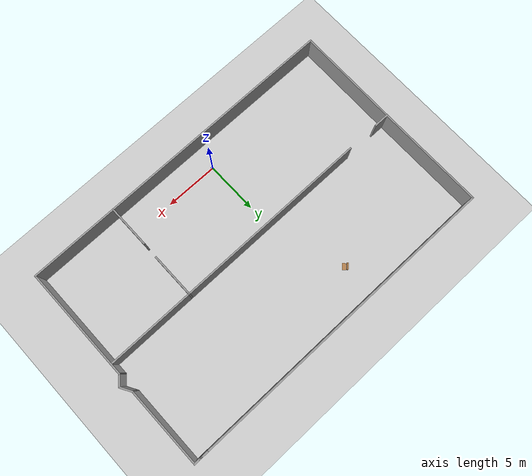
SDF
<sdf version="1.7">
 <world name="default">
  <light name="sun" type="directional">
   <pose>0 0 10 0 -0 0</pose>
   <diffuse>0.8 0.8 0.8 1</diffuse>
   <specular>0.2 0.2 0.2 1</specular>
   <attenuation>
    <range>1000</range>
    <constant>0.9</constant>
    <linear>0.01</linear>
    <quadratic>0.001</quadratic>
   </attenuation>
   <direction>-0.5 0.1 -0.9</direction>
   <spot><inner_angle>0</inner_angle><outer_angle>0</outer_angle><falloff>0</falloff></spot>
  </light>
  <model name="ground_plane">
   <static>1</static>
   <link name="link">
    <collision name="collision">
     <geometry><plane><normal>0 0 1</normal><size>100 100</size></plane></geometry>
     <surface>
      <contact><collide_bitmask>65535</collide_bitmask></contact>
      <friction><ode><mu>100</mu><mu2>50</mu2></ode></friction>
     </surface>
    </collision>
    <visual name="visual">
     <cast_shadows>0</cast_shadows>
     <geometry><plane><normal>0 0 1</normal><size>100 100</size></plane></geometry>
     <material>
      <script><uri>file://media/materials/scripts/gazebo.material</uri><name>Gazebo/Grey</name></script>
     </material>
    </visual>
   </link>
  </model>
  <gravity>0 0 -9.8</gravity>
  <magnetic_field>6e-06 2.3e-05 -4.2e-05</magnetic_field>
  <atmosphere type="adiabatic"/>
  <physics type="ode">
   <max_step_size>0.001</max_step_size>
   <real_time_factor>1</real_time_factor>
   <real_time_update_rate>1000</real_time_update_rate>
  </physics>
  <scene><ambient>0.4 0.4 0.4 1</ambient><background>0.7 0.7 0.7 1</background><shadows>1</shadows></scene>
  <audio><device>default</device></audio>
  <spherical_coordinates>
   <surface_model>EARTH_WGS84</surface_model>
   <latitude_deg>0</latitude_deg>
   <longitude_deg>0</longitude_deg>
   <elevation>0</elevation>
   <heading_deg>0</heading_deg>
  </spherical_coordinates>
  <model name="my_bot">
   <link name="base_link">
    <inertial>
     <pose>0.058676 0 0.043869 0 -0 0</pose>
     <mass>0.701</mass>
     <inertia>
      <ixx>0.00324724</ixx>
      <ixy>0</ixy>
      <ixz>0.000339625</ixz>
      <iyy>0.00355537</iyy>
      <iyz>0</iyz>
      <izz>0.00467089</izz>
     </inertia>
    </inertial>
    <collision name="base_link_fixed_joint_lump__chassis_collision">
     <pose>0.05251 0 0.037505 0 -0 0</pose>
     <geometry><box><size>0.225 0.225 0.07501</size></box></geometry>
    </collision>
    <collision name="base_link_fixed_joint_lump__caster_wheel_collision_1">
     <pose>0.10876 0 0 0 -0 0</pose>
     <geometry><sphere><radius>0.04</radius></sphere></geometry>
     <surface><friction><ode><mu>0.001</mu><mu2>0.001</mu2></ode></friction></surface>
    </collision>
    <collision name="base_link_fixed_joint_lump__laser_frame_collision_2">
     <pose>0.04001 0 0.12 0 -0 0</pose>
     <geometry><cylinder><length>0.025</length><radius>0.04</radius></cylinder></geometry>
    </collision>
    <collision name="base_link_fixed_joint_lump__imu_link_collision_3">
     <geometry><box><size>0.001 0.001 0.001</size></box></geometry>
    </collision>
    <visual name="base_link_fixed_joint_lump__chassis_visual">
     <pose>0.05251 0 0.037505 0 -0 0</pose>
     <geometry><box><size>0.225 0.225 0.07501</size></box></geometry>
     <material>
      <script><name>Gazebo/Blue</name><uri>file://media/materials/scripts/gazebo.material</uri></script>
     </material>
    </visual>
    <visual name="base_link_fixed_joint_lump__camera_link_visual_1">
     <pose>0.14001 0 0.10285 0 -0 0</pose>
     <geometry><box><size>0.005 0.025 0.025</size></box></geometry>
     <material>
      <script><name>Gazebo/Green</name><uri>file://media/materials/scripts/gazebo.material</uri></script>
     </material>
    </visual>
    <visual name="base_link_fixed_joint_lump__caster_wheel_visual_2">
     <pose>0.10876 0 0 0 -0 0</pose>
     <geometry><sphere><radius>0.04</radius></sphere></geometry>
     <material>
      <script><name>Gazebo/White</name><uri>file://media/materials/scripts/gazebo.material</uri></script>
     </material>
    </visual>
    <visual name="base_link_fixed_joint_lump__laser_frame_visual_3">
     <pose>0.04001 0 0.12 0 -0 0</pose>
     <geometry><cylinder><length>0.025</length><radius>0.04</radius></cylinder></geometry>
     <material>
      <script><name>Gazebo/Red</name><uri>file://media/materials/scripts/gazebo.material</uri></script>
     </material>
    </visual>
    <visual name="base_link_fixed_joint_lump__imu_link_visual_4">
     <geometry><box><size>0.001 0.001 0.001</size></box></geometry>
    </visual>
    <sensor name="camera" type="camera">
     <visualize>1</visualize>
     <update_rate>10</update_rate>
     <camera>
      <horizontal_fov>1.089</horizontal_fov>
      <image><format>R8G8B8</format><width>640</width><height>480</height></image>
      <clip><near>0.05</near><far>8</far></clip>
     </camera>
     <plugin name="camera_controller" filename="libgazebo_ros_camera.so">
      <frame_name>camera_link_optical</frame_name>
     </plugin>
     <pose>0.14001 0 0.10285 0 -0 0</pose>
    </sensor>
    <sensor name="laser" type="ray">
     <visualize>0</visualize>
     <update_rate>10</update_rate>
     <ray>
      <scan>
       <horizontal>
        <samples>360</samples>
        <min_angle>-3.14</min_angle>
        <max_angle>3.14</max_angle>
        <resolution>1</resolution>
       </horizontal>
       <vertical><samples>1</samples><min_angle>0</min_angle><max_angle>0</max_angle></vertical>
      </scan>
      <range><min>0.3</min><max>12</max></range>
     </ray>
     <plugin name="laser_controller" filename="libgazebo_ros_ray_sensor.so">
      <ros><argument>~/out:=scan</argument></ros>
      <output_type>sensor_msgs/LaserScan</output_type>
      <frame_name>laser_frame</frame_name>
     </plugin>
     <pose>0.04001 0 0.12 0 -0 0</pose>
    </sensor>
    <sensor name="imu_sensor" type="imu">
     <plugin name="imu_plugin" filename="libgazebo_ros_imu_sensor.so">
      <initial_orientation_as_reference>0</initial_orientation_as_reference>
      <frame_name>imu_link</frame_name>
      <ros><namespace>/imu</namespace><remapping>~/out:=data</remapping></ros>
     </plugin>
     <always_on>1</always_on>
     <update_rate>100</update_rate>
     <visualize>1</visualize>
     <imu>
      <angular_velocity>
       <x>
        <noise type="gaussian">
         <mean>0</mean>
         <stddev>0.0002</stddev>
         <bias_mean>7.5e-06</bias_mean>
         <bias_stddev>8e-07</bias_stddev>
        </noise>
       </x>
       <y>
        <noise type="gaussian">
         <mean>0</mean>
         <stddev>0.0002</stddev>
         <bias_mean>7.5e-06</bias_mean>
         <bias_stddev>8e-07</bias_stddev>
        </noise>
       </y>
       <z>
        <noise type="gaussian">
         <mean>0</mean>
         <stddev>0.0002</stddev>
         <bias_mean>7.5e-06</bias_mean>
         <bias_stddev>8e-07</bias_stddev>
        </noise>
       </z>
      </angular_velocity>
      <linear_acceleration>
       <x>
        <noise type="gaussian">
         <mean>0</mean>
         <stddev>0.017</stddev>
         <bias_mean>0.1</bias_mean>
         <bias_stddev>0.001</bias_stddev>
        </noise>
       </x>
       <y>
        <noise type="gaussian">
         <mean>0</mean>
         <stddev>0.017</stddev>
         <bias_mean>0.1</bias_mean>
         <bias_stddev>0.001</bias_stddev>
        </noise>
       </y>
       <z>
        <noise type="gaussian">
         <mean>0</mean>
         <stddev>0.017</stddev>
         <bias_mean>0.1</bias_mean>
         <bias_stddev>0.001</bias_stddev>
        </noise>
       </z>
      </linear_acceleration>
     </imu>
    </sensor>
   </link>
   <joint name="left_wheel_joint" type="revolute">
    <pose relative_to="base_link">0 0.11975 0 -1.5708 0 0</pose>
    <parent>base_link</parent>
    <child>left_wheel</child>
    <axis>
     <xyz>0 0 1</xyz>
     <limit><lower>-1e+16</lower><upper>1e+16</upper></limit>
     <dynamics><spring_reference>0</spring_reference><spring_stiffness>0</spring_stiffness></dynamics>
    </axis>
   </joint>
   <link name="left_wheel">
    <pose relative_to="left_wheel_joint">0 0 0 0 -0 0</pose>
    <inertial>
     <mass>0.1</mass>
     <inertia>
      <ixx>4.08333e-05</ixx>
      <ixy>0</ixy>
      <ixz>0</ixz>
      <iyy>4.08333e-05</iyy>
      <iyz>0</iyz>
      <izz>8e-05</izz>
     </inertia>
    </inertial>
    <collision name="left_wheel_collision">
     <geometry><cylinder><length>0.01</length><radius>0.04</radius></cylinder></geometry>
    </collision>
    <visual name="left_wheel_visual">
     <geometry><cylinder><length>0.01</length><radius>0.04</radius></cylinder></geometry>
     <material>
      <script><name>Gazebo/Black</name><uri>file://media/materials/scripts/gazebo.material</uri></script>
     </material>
    </visual>
   </link>
   <joint name="right_wheel_joint" type="revolute">
    <pose relative_to="base_link">0 -0.11975 0 1.5708 -0 0</pose>
    <parent>base_link</parent>
    <child>right_wheel</child>
    <axis>
     <xyz>0 0 -1</xyz>
     <limit><lower>-1e+16</lower><upper>1e+16</upper></limit>
     <dynamics><spring_reference>0</spring_reference><spring_stiffness>0</spring_stiffness></dynamics>
    </axis>
   </joint>
   <link name="right_wheel">
    <pose relative_to="right_wheel_joint">0 0 0 0 -0 0</pose>
    <inertial>
     <mass>0.1</mass>
     <inertia>
      <ixx>4.08333e-05</ixx>
      <ixy>0</ixy>
      <ixz>0</ixz>
      <iyy>4.08333e-05</iyy>
      <iyz>0</iyz>
      <izz>8e-05</izz>
     </inertia>
    </inertial>
    <collision name="right_wheel_collision">
     <geometry><cylinder><length>0.01</length><radius>0.04</radius></cylinder></geometry>
    </collision>
    <visual name="right_wheel_visual">
     <geometry><cylinder><length>0.01</length><radius>0.04</radius></cylinder></geometry>
     <material>
      <script><name>Gazebo/Black</name><uri>file://media/materials/scripts/gazebo.material</uri></script>
     </material>
    </visual>
   </link>
   <static>0</static>
   <plugin name="gazebo_ros2_control" filename="libgazebo_ros2_control.so">
    <parameters>/home/praveenrav702/comp_ws/install/autonomous_diffdrive_robot/share/autonomous_diffdrive_robot/config/my_controllers.yaml</parameters>
    <parameters>/home/praveenrav702/comp_ws/install/autonomous_diffdrive_robot/share/autonomous_diffdrive_robot/config/gaz_ros2_ctl_use_sim.yaml</parameters>
   </plugin>
   <pose>0.000297 2.5e-05 0.04 0 1e-06 0.002592</pose>
  </model>
  <model name="ParticleFilterRoom">
   <pose>2.03261 7.64687 0 0 -0 0</pose>
   <link name="Floor_1">
    <collision name="Floor_1_Collision">
     <geometry><box><size>0.15 4 0.1</size></box></geometry>
     <pose>0 0 0.05 0 -0 0</pose>
    </collision>
    <visual name="Floor_1_Visual">
     <pose>0 0 0.05 0 -0 0</pose>
     <geometry><box><size>0.15 4 0.1</size></box></geometry>
     <material>
      <script><uri>file://media/materials/scripts/gazebo.material</uri><name>Gazebo/Grey</name></script>
      <ambient>1 1 1 1</ambient>
     </material>
     <meta><layer>1</layer></meta>
    </visual>
    <pose>6.94448 -7.80927 2.5 0 -0 0</pose>
   </link>
   <link name="Wall_17">
    <collision name="Wall_17_Collision">
     <geometry><box><size>31.25 0.15 2.5</size></box></geometry>
     <pose>0 0 1.25 0 -0 0</pose>
    </collision>
    <visual name="Wall_17_Visual">
     <pose>0 0 1.25 0 -0 0</pose>
     <geometry><box><size>31.25 0.15 2.5</size></box></geometry>
     <material>
      <script><uri>file://media/materials/scripts/gazebo.material</uri><name>Gazebo/Grey</name></script>
      <ambient>1 1 1 1</ambient>
     </material>
     <meta><layer>0</layer></meta>
    </visual>
    <pose>-0.35018 -9.85663 0 0 -0 0</pose>
   </link>
   <link name="Wall_19">
    <collision name="Wall_19_Collision">
     <geometry><box><size>4 0.15 2.5</size></box></geometry>
     <pose>0 0 1.25 0 -0 0</pose>
    </collision>
    <visual name="Wall_19_Visual">
     <pose>0 0 1.25 0 -0 0</pose>
     <geometry><box><size>4 0.15 2.5</size></box></geometry>
     <material>
      <script><uri>file://media/materials/scripts/gazebo.material</uri><name>Gazebo/Grey</name></script>
      <ambient>1 1 1 1</ambient>
     </material>
     <meta><layer>0</layer></meta>
    </visual>
    <pose>6.94448 -7.80927 0 0 -0 1.5708</pose>
   </link>
   <link name="Wall_22">
    <collision name="Wall_22_Collision">
     <geometry><box><size>4.25 0.15 2.5</size></box></geometry>
     <pose>0 0 1.25 0 -0 0</pose>
    </collision>
    <visual name="Wall_22_Visual">
     <pose>0 0 1.25 0 -0 0</pose>
     <geometry><box><size>4.25 0.15 2.5</size></box></geometry>
     <material>
      <script><uri>file://media/materials/scripts/gazebo.material</uri><name>Gazebo/Grey</name></script>
      <ambient>1 1 1 1</ambient>
     </material>
     <meta><layer>0</layer></meta>
    </visual>
    <pose>6.97014 -2.29282 0 0 -0 1.5708</pose>
   </link>
   <link name="Wall_24">
    <collision name="Wall_24_Collision">
     <geometry><box><size>18.5 0.15 2.5</size></box></geometry>
     <pose>0 0 1.25 0 -0 0</pose>
    </collision>
    <visual name="Wall_24_Visual">
     <pose>0 0 1.25 0 -0 0</pose>
     <geometry><box><size>18.5 0.15 2.5</size></box></geometry>
     <material>
      <script><uri>file://media/materials/scripts/gazebo.material</uri><name>Gazebo/Grey</name></script>
      <ambient>1 1 1 1</ambient>
     </material>
     <meta><layer>0</layer></meta>
    </visual>
    <pose>-2.20486 -0.242823 0 0 -0 3.14159</pose>
   </link>
   <link name="Wall_26">
    <collision name="Wall_26_Collision">
     <geometry><box><size>1.5 0.15 2.5</size></box></geometry>
     <pose>0 0 1.25 0 -0 0</pose>
    </collision>
    <visual name="Wall_26_Visual">
     <pose>0 0 1.25 0 -0 0</pose>
     <geometry><box><size>1.5 0.15 2.5</size></box></geometry>
     <material>
      <script><uri>file://media/materials/scripts/gazebo.material</uri><name>Gazebo/Grey</name></script>
      <ambient>1 1 1 1</ambient>
     </material>
     <meta><layer>0</layer></meta>
    </visual>
    <pose>-15.1549 -0.242823 0 0 -0 3.14159</pose>
   </link>
   <link name="Wall_30">
    <collision name="Wall_30_Collision">
     <geometry><box><size>9.76406 0.15 2.5</size></box></geometry>
     <pose>0 0 1.25 0 -0 0</pose>
    </collision>
    <visual name="Wall_30_Visual">
     <pose>0 0 1.25 0 -0 0</pose>
     <geometry><box><size>9.76406 0.15 2.5</size></box></geometry>
     <material>
      <script><uri>file://media/materials/scripts/gazebo.material</uri><name>Gazebo/Grey</name></script>
      <ambient>1 1 1 1</ambient>
     </material>
     <meta><layer>0</layer></meta>
    </visual>
    <pose>-15.865 -5.04973 0 0 -0 1.56348</pose>
   </link>
   <link name="Wall_45">
    <collision name="Wall_45_Collision">
     <geometry><box><size>10.75 0.15 2.5</size></box></geometry>
     <pose>0 0 1.25 0 -0 0</pose>
    </collision>
    <visual name="Wall_45_Visual">
     <pose>0 0 1.25 0 -0 0</pose>
     <geometry><box><size>10.75 0.15 2.5</size></box></geometry>
     <material>
      <script><uri>file://media/materials/scripts/gazebo.material</uri><name>Gazebo/Grey</name></script>
      <ambient>1 1 1 1</ambient>
     </material>
     <meta><layer>0</layer></meta>
    </visual>
    <pose>15.1998 -4.55663 0 0 -0 1.5708</pose>
   </link>
   <link name="Wall_47">
    <collision name="Wall_47_Collision">
     <geometry><box><size>8.25 0.15 2.5</size></box></geometry>
     <pose>0 0 1.25 0 -0 0</pose>
    </collision>
    <visual name="Wall_47_Visual">
     <pose>0 0 1.25 0 -0 0</pose>
     <geometry><box><size>8.25 0.15 2.5</size></box></geometry>
     <material>
      <script><uri>file://media/materials/scripts/gazebo.material</uri><name>Gazebo/Grey</name></script>
      <ambient>1 1 1 1</ambient>
     </material>
     <meta><layer>0</layer></meta>
    </visual>
    <pose>11.0201 -0.242823 0 0 -0 0</pose>
   </link>
   <link name="Wall_75">
    <collision name="Wall_75_Collision">
     <geometry><box><size>10.25 0.15 2.5</size></box></geometry>
     <pose>0 0 1.25 0 -0 0</pose>
    </collision>
    <visual name="Wall_75_Visual">
     <pose>0 0 1.25 0 -0 0</pose>
     <geometry><box><size>10.25 0.15 2.5</size></box></geometry>
     <material>
      <script><uri>file://media/materials/scripts/gazebo.material</uri><name>Gazebo/Grey</name></script>
      <ambient>1 1 1 1</ambient>
     </material>
     <meta><layer>0</layer></meta>
    </visual>
    <pose>-15.8299 4.80718 0 0 -0 1.5708</pose>
   </link>
   <link name="Wall_76">
    <collision name="Wall_76_Collision">
     <geometry><box><size>30 0.15 2.5</size></box></geometry>
     <pose>0 0 1.25 0 -0 0</pose>
    </collision>
    <visual name="Wall_76_Visual">
     <pose>0 0 1.25 0 -0 0</pose>
     <geometry><box><size>30 0.15 2.5</size></box></geometry>
     <material>
      <script><uri>file://media/materials/scripts/gazebo.material</uri><name>Gazebo/Grey</name></script>
      <ambient>1 1 1 1</ambient>
     </material>
     <meta><layer>0</layer></meta>
    </visual>
    <pose>-0.904863 9.85718 0 0 -0 0</pose>
   </link>
   <link name="Wall_83">
    <collision name="Wall_83_Collision">
     <geometry><box><size>0.75 0.15 2.5</size></box></geometry>
     <pose>0 0 1.25 0 -0 0</pose>
    </collision>
    <visual name="Wall_83_Visual">
     <pose>0 0 1.25 0 -0 0</pose>
     <geometry><box><size>0.75 0.15 2.5</size></box></geometry>
     <material>
      <script><uri>file://media/materials/scripts/gazebo.material</uri><name>Gazebo/Grey</name></script>
      <ambient>1 1 1 1</ambient>
     </material>
     <meta><layer>0</layer></meta>
    </visual>
    <pose>14.3201 9.85718 0 0 -0 0</pose>
   </link>
   <link name="Wall_84">
    <collision name="Wall_84_Collision">
     <geometry><box><size>0.25 0.15 2.5</size></box></geometry>
     <pose>0 0 1.25 0 -0 0</pose>
    </collision>
    <visual name="Wall_84_Visual">
     <pose>0 0 1.25 0 -0 0</pose>
     <geometry><box><size>0.25 0.15 2.5</size></box></geometry>
     <material>
      <script><uri>file://media/materials/scripts/gazebo.material</uri><name>Gazebo/Grey</name></script>
      <ambient>1 1 1 1</ambient>
     </material>
     <meta><layer>0</layer></meta>
    </visual>
    <pose>14.6701 9.85718 0 0 -0 0</pose>
   </link>
   <link name="Wall_87">
    <collision name="Wall_87_Collision">
     <geometry><box><size>0.25 0.15 2.5</size></box></geometry>
     <pose>0 0 1.25 0 -0 0</pose>
    </collision>
    <visual name="Wall_87_Visual">
     <pose>0 0 1.25 0 -0 0</pose>
     <geometry><box><size>0.25 0.15 2.5</size></box></geometry>
     <material>
      <script><uri>file://media/materials/scripts/gazebo.material</uri><name>Gazebo/Grey</name></script>
      <ambient>1 1 1 1</ambient>
     </material>
     <meta><layer>0</layer></meta>
    </visual>
    <pose>14.6701 9.85718 0 0 -0 0</pose>
   </link>
   <link name="Wall_88">
    <collision name="Wall_88_Collision">
     <geometry><box><size>0.25 0.15 2.5</size></box></geometry>
     <pose>0 0 1.25 0 -0 0</pose>
    </collision>
    <visual name="Wall_88_Visual">
     <pose>0 0 1.25 0 -0 0</pose>
     <geometry><box><size>0.25 0.15 2.5</size></box></geometry>
     <material>
      <script><uri>file://media/materials/scripts/gazebo.material</uri><name>Gazebo/Grey</name></script>
      <ambient>1 1 1 1</ambient>
     </material>
     <meta><layer>0</layer></meta>
    </visual>
    <pose>14.7701 9.85718 0 0 -0 0</pose>
   </link>
   <link name="Wall_89">
    <collision name="Wall_89_Collision">
     <geometry><box><size>0.25 0.15 2.5</size></box></geometry>
     <pose>0 0 1.25 0 -0 0</pose>
    </collision>
    <visual name="Wall_89_Visual">
     <pose>0 0 1.25 0 -0 0</pose>
     <geometry><box><size>0.25 0.15 2.5</size></box></geometry>
     <material>
      <script><uri>file://media/materials/scripts/gazebo.material</uri><name>Gazebo/Grey</name></script>
      <ambient>1 1 1 1</ambient>
     </material>
     <meta><layer>0</layer></meta>
    </visual>
    <pose>14.7701 9.85718 0 0 -0 3.14159</pose>
   </link>
   <link name="Wall_90">
    <collision name="Wall_90_Collision">
     <geometry><box><size>0.75 0.15 2.5</size></box></geometry>
     <pose>0 0 1.25 0 -0 0</pose>
    </collision>
    <visual name="Wall_90_Visual">
     <pose>0 0 1.25 0 -0 0</pose>
     <geometry><box><size>0.75 0.15 2.5</size></box></geometry>
     <material>
      <script><uri>file://media/materials/scripts/gazebo.material</uri><name>Gazebo/Grey</name></script>
      <ambient>1 1 1 1</ambient>
     </material>
     <meta><layer>0</layer></meta>
    </visual>
    <pose>15.0201 9.85718 0 0 -0 0</pose>
   </link>
   <link name="Wall_91">
    <collision name="Wall_91_Collision">
     <geometry><box><size>7.5 0.15 2.5</size></box></geometry>
     <pose>0 0 1.25 0 -0 0</pose>
    </collision>
    <visual name="Wall_91_Visual">
     <pose>0 0 1.25 0 -0 0</pose>
     <geometry><box><size>7.5 0.15 2.5</size></box></geometry>
     <material>
      <script><uri>file://media/materials/scripts/gazebo.material</uri><name>Gazebo/Grey</name></script>
      <ambient>1 1 1 1</ambient>
     </material>
     <meta><layer>0</layer></meta>
    </visual>
    <pose>15.3201 6.18218 0 0 -0 -1.5708</pose>
   </link>
   <link name="Wall_95">
    <collision name="Wall_95_Collision">
     <geometry><box><size>1.25 0.15 2.5</size></box></geometry>
     <pose>0 0 1.25 0 -0 0</pose>
    </collision>
    <visual name="Wall_95_Visual">
     <pose>0 0 1.25 0 -0 0</pose>
     <geometry><box><size>1.25 0.15 2.5</size></box></geometry>
     <material>
      <script><uri>file://media/materials/scripts/gazebo.material</uri><name>Gazebo/Grey</name></script>
      <ambient>1 1 1 1</ambient>
     </material>
     <meta><layer>0</layer></meta>
    </visual>
    <pose>15.5951 2.03086 0 0 -0 -1.0472</pose>
   </link>
   <link name="Wall_96">
    <collision name="Wall_96_Collision">
     <geometry><box><size>1.2023 0.15 2.5</size></box></geometry>
     <pose>0 0 1.25 0 -0 0</pose>
    </collision>
    <visual name="Wall_96_Visual">
     <pose>0 0 1.25 0 -0 0</pose>
     <geometry><box><size>1.2023 0.15 2.5</size></box></geometry>
     <material>
      <script><uri>file://media/materials/scripts/gazebo.material</uri><name>Gazebo/Grey</name></script>
      <ambient>1 1 1 1</ambient>
     </material>
     <meta><layer>0</layer></meta>
    </visual>
    <pose>15.535 1.14896 0 0 -0 -2.2614</pose>
   </link>
   <static>1</static>
  </model>
  <model name="wooden_case">
   <link name="base">
    <pose>0 0 0.024 0 -0 0</pose>
    <inertial>
     <pose>-0.022184 0 0.171592 0 -0 0</pose>
     <mass>3.96264</mass>
     <inertia>
      <ixx>0.213536</ixx>
      <ixy>0</ixy>
      <ixz>0.000779377</ixz>
      <iyy>0.0708943</iyy>
      <iyz>0</iyz>
      <izz>0.154604</izz>
     </inertia>
    </inertial>
    <collision name="collision_back">
     <pose>-0.053975 0 0.1778 0 -0 0</pose>
     <geometry><box><size>0.01905 0.5461 0.3175</size></box></geometry>
     <surface>
      <contact>
       <poissons_ratio>0.347</poissons_ratio>
       <elastic_modulus>8.8e+09</elastic_modulus>
       <ode><kp>100000</kp><kd>100</kd><max_vel>100</max_vel><min_depth>0.001</min_depth></ode>
      </contact>
      <friction>
       <torsional>
        <coefficient>1</coefficient>
        <use_patch_radius>0</use_patch_radius>
        <surface_radius>0.01</surface_radius>
       </torsional>
      </friction>
     </surface>
    </collision>
    <visual name="visual_back">
     <pose>-0.053975 0 0.1778 0 -0 0</pose>
     <geometry><box><size>0.01905 0.5461 0.3175</size></box></geometry>
     <material>
      <script><uri>file://media/materials/scripts/gazebo.material</uri><name>Gazebo/Wood</name></script>
     </material>
    </visual>
    <collision name="collision_bottom">
     <pose>0 0 0.009525 0 -0 0</pose>
     <geometry><box><size>0.127 0.5842 0.01905</size></box></geometry>
     <surface>
      <contact>
       <poissons_ratio>0.347</poissons_ratio>
       <elastic_modulus>8.8e+09</elastic_modulus>
       <ode><kp>100000</kp><kd>100</kd><max_vel>100</max_vel><min_depth>0.001</min_depth></ode>
      </contact>
      <friction>
       <torsional>
        <coefficient>1</coefficient>
        <use_patch_radius>0</use_patch_radius>
        <surface_radius>0.01</surface_radius>
       </torsional>
      </friction>
     </surface>
    </collision>
    <visual name="visual_bottom">
     <pose>0 0 0.009525 0 -0 0</pose>
     <geometry><box><size>0.127 0.5842 0.01905</size></box></geometry>
     <material>
      <script><uri>file://media/materials/scripts/gazebo.material</uri><name>Gazebo/Wood</name></script>
     </material>
    </visual>
    <collision name="collision_top">
     <pose>0 0 0.346075 0 -0 0</pose>
     <geometry><box><size>0.127 0.5842 0.01905</size></box></geometry>
     <surface>
      <contact>
       <poissons_ratio>0.347</poissons_ratio>
       <elastic_modulus>8.8e+09</elastic_modulus>
       <ode><kp>100000</kp><kd>100</kd><max_vel>100</max_vel><min_depth>0.001</min_depth></ode>
      </contact>
      <friction>
       <torsional>
        <coefficient>1</coefficient>
        <use_patch_radius>0</use_patch_radius>
        <surface_radius>0.01</surface_radius>
       </torsional>
      </friction>
     </surface>
    </collision>
    <visual name="visual_top">
     <pose>0 0 0.346075 0 -0 0</pose>
     <geometry><box><size>0.127 0.5842 0.01905</size></box></geometry>
     <material>
      <script><uri>file://media/materials/scripts/gazebo.material</uri><name>Gazebo/Wood</name></script>
     </material>
    </visual>
    <collision name="collision_left">
     <pose>0 -0.282575 0.1778 0 -0 0</pose>
     <geometry><box><size>0.127 0.01905 0.3175</size></box></geometry>
     <surface>
      <contact>
       <poissons_ratio>0.347</poissons_ratio>
       <elastic_modulus>8.8e+09</elastic_modulus>
       <ode><kp>100000</kp><kd>100</kd><max_vel>100</max_vel><min_depth>0.001</min_depth></ode>
      </contact>
      <friction>
       <torsional>
        <coefficient>1</coefficient>
        <use_patch_radius>0</use_patch_radius>
        <surface_radius>0.01</surface_radius>
       </torsional>
      </friction>
     </surface>
    </collision>
    <visual name="visual_left">
     <pose>0 -0.282575 0.1778 0 -0 0</pose>
     <geometry><box><size>0.127 0.01905 0.3175</size></box></geometry>
     <material>
      <script><uri>file://media/materials/scripts/gazebo.material</uri><name>Gazebo/Wood</name></script>
     </material>
    </visual>
    <collision name="collision_right">
     <pose>0 0.282575 0.1778 0 -0 0</pose>
     <geometry><box><size>0.127 0.01905 0.3175</size></box></geometry>
     <surface>
      <contact>
       <poissons_ratio>0.347</poissons_ratio>
       <elastic_modulus>8.8e+09</elastic_modulus>
       <ode><kp>100000</kp><kd>100</kd><max_vel>100</max_vel><min_depth>0.001</min_depth></ode>
      </contact>
      <friction>
       <torsional>
        <coefficient>1</coefficient>
        <use_patch_radius>0</use_patch_radius>
        <surface_radius>0.01</surface_radius>
       </torsional>
      </friction>
     </surface>
    </collision>
    <visual name="visual_right">
     <pose>0 0.282575 0.1778 0 -0 0</pose>
     <geometry><box><size>0.127 0.01905 0.3175</size></box></geometry>
     <material>
      <script><uri>file://media/materials/scripts/gazebo.material</uri><name>Gazebo/Wood</name></script>
     </material>
    </visual>
    <collision name="collision_block_left">
     <pose>0.0095 -0.2151 -0.012 0 -0 0</pose>
     <geometry><box><size>0.108 0.05 0.024</size></box></geometry>
     <surface>
      <contact>
       <poissons_ratio>0.347</poissons_ratio>
       <elastic_modulus>8.8e+09</elastic_modulus>
       <ode><kp>100000</kp><kd>100</kd><max_vel>100</max_vel><min_depth>0.001</min_depth></ode>
      </contact>
      <friction>
       <torsional>
        <coefficient>1</coefficient>
        <use_patch_radius>0</use_patch_radius>
        <surface_radius>0.01</surface_radius>
       </torsional>
      </friction>
     </surface>
    </collision>
    <visual name="visual_block_left">
     <pose>0.0095 -0.2151 -0.012 0 -0 0</pose>
     <geometry><box><size>0.108 0.05 0.024</size></box></geometry>
     <material>
      <script><uri>file://media/materials/scripts/gazebo.material</uri><name>Gazebo/Wood</name></script>
     </material>
    </visual>
    <collision name="collision_block_right">
     <pose>0.0095 0.2151 -0.012 0 -0 0</pose>
     <geometry><box><size>0.108 0.05 0.024</size></box></geometry>
     <surface>
      <contact>
       <poissons_ratio>0.347</poissons_ratio>
       <elastic_modulus>8.8e+09</elastic_modulus>
       <ode><kp>100000</kp><kd>100</kd><max_vel>100</max_vel><min_depth>0.001</min_depth></ode>
      </contact>
      <friction>
       <torsional>
        <coefficient>1</coefficient>
        <use_patch_radius>0</use_patch_radius>
        <surface_radius>0.01</surface_radius>
       </torsional>
      </friction>
     </surface>
    </collision>
    <visual name="visual_block_right">
     <pose>0.0095 0.2151 -0.012 0 -0 0</pose>
     <geometry><box><size>0.108 0.05 0.024</size></box></geometry>
     <material>
      <script><uri>file://media/materials/scripts/gazebo.material</uri><name>Gazebo/Wood</name></script>
     </material>
    </visual>
   </link>
   <link name="lid">
    <pose>0.243775 0 0.009525 0 -0 0</pose>
    <inertial>
     <mass>1.97874</mass>
     <inertia>
      <ixx>0.0563367</ixx>
      <ixy>0</ixy>
      <ixz>0</ixz>
      <iyy>0.020911</iyy>
      <iyz>0</iyz>
      <izz>0.0771281</izz>
     </inertia>
    </inertial>
    <collision name="collision">
     <geometry><box><size>0.3556 0.5842 0.01905</size></box></geometry>
     <surface>
      <contact>
       <poissons_ratio>0.347</poissons_ratio>
       <elastic_modulus>8.8e+09</elastic_modulus>
       <ode><kp>100000</kp><kd>100</kd><max_vel>100</max_vel><min_depth>0.001</min_depth></ode>
      </contact>
      <friction>
       <torsional>
        <coefficient>1</coefficient>
        <use_patch_radius>0</use_patch_radius>
        <surface_radius>0.01</surface_radius>
       </torsional>
      </friction>
     </surface>
    </collision>
    <visual name="visual">
     <geometry><box><size>0.3556 0.5842 0.01905</size></box></geometry>
     <material>
      <script><uri>file://media/materials/scripts/gazebo.material</uri><name>Gazebo/Wood</name></script>
     </material>
    </visual>
    <visual name="tee_nut_1">
     <pose>0.122 -0.216 0 0 -0 0</pose>
     <geometry><cylinder><radius>0.00635</radius><length>0.0192405</length></cylinder></geometry>
     <material>
      <script><uri>file://media/materials/scripts/gazebo.material</uri><name>Gazebo/Grey</name></script>
     </material>
    </visual>
    <visual name="tee_nut_2">
     <pose>0.122 -0.088 0 0 -0 0</pose>
     <geometry><cylinder><radius>0.00635</radius><length>0.0192405</length></cylinder></geometry>
     <material>
      <script><uri>file://media/materials/scripts/gazebo.material</uri><name>Gazebo/Grey</name></script>
     </material>
    </visual>
    <visual name="tee_nut_3">
     <pose>0.122 0.088 0 0 -0 0</pose>
     <geometry><cylinder><radius>0.00635</radius><length>0.0192405</length></cylinder></geometry>
     <material>
      <script><uri>file://media/materials/scripts/gazebo.material</uri><name>Gazebo/Grey</name></script>
     </material>
    </visual>
    <visual name="tee_nut_4">
     <pose>0.122 0.216 0 0 -0 0</pose>
     <geometry><cylinder><radius>0.00635</radius><length>0.0192405</length></cylinder></geometry>
     <material>
      <script><uri>file://media/materials/scripts/gazebo.material</uri><name>Gazebo/Grey</name></script>
     </material>
    </visual>
   </link>
   <joint name="lid_hinge" type="revolute">
    <pose>-0.1778 0 0.01905 0 -0 0</pose>
    <parent>base</parent>
    <child>lid</child>
    <axis>
     <xyz>0 1 0</xyz>
     <limit><upper>0.523599</upper><lower>-1.5708</lower></limit>
     <dynamics><spring_reference>0</spring_reference><spring_stiffness>0</spring_stiffness></dynamics>
    </axis>
   </joint>
   <pose>-2.50537 14.4524 -0.001057 -0 -0.000427 -0.78</pose>
  </model>
 </world>
</sdf>
